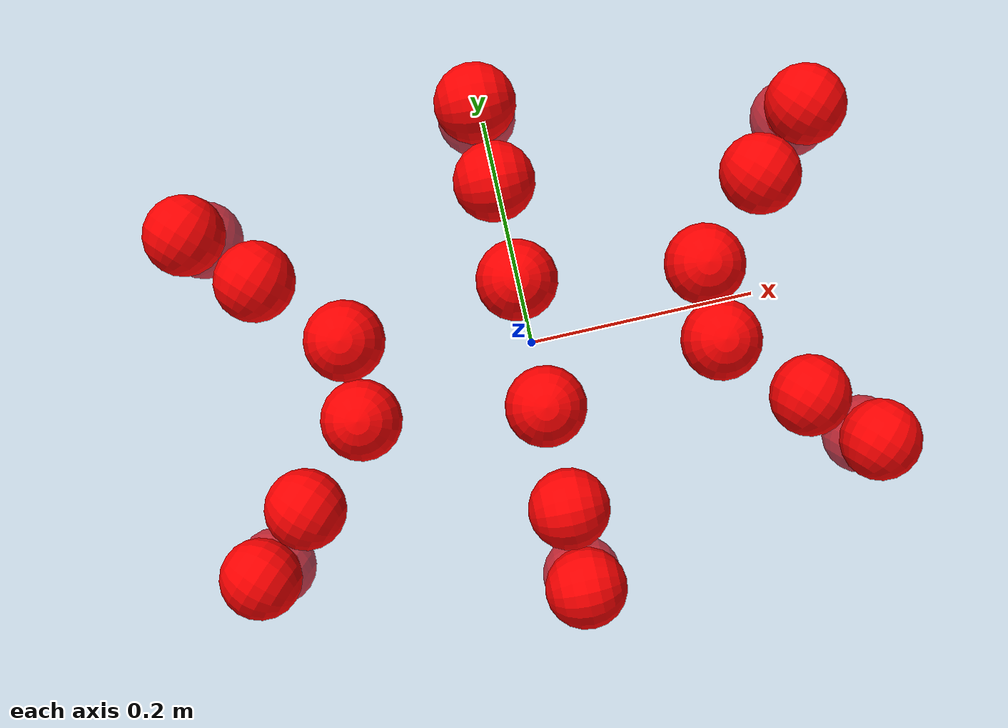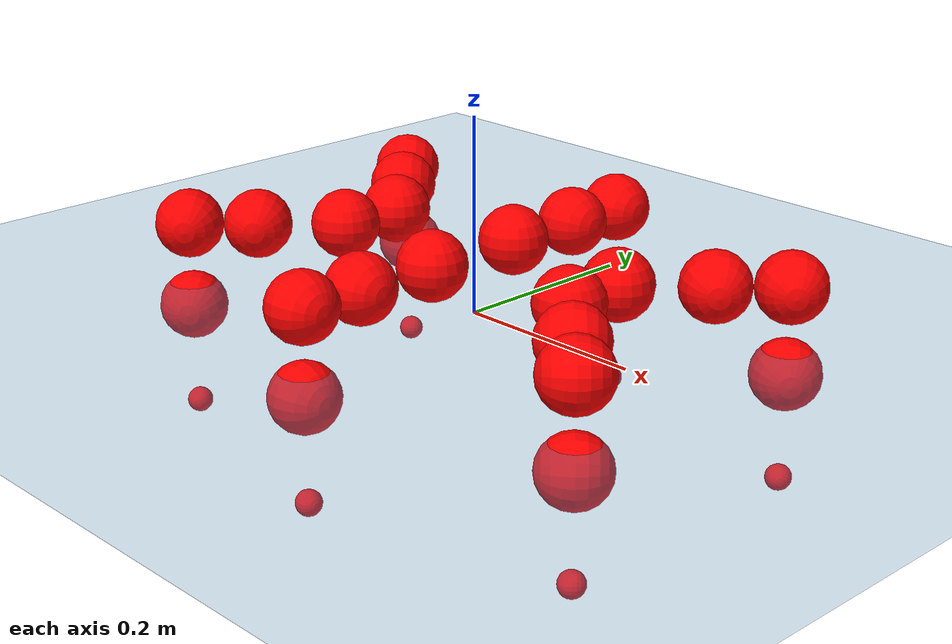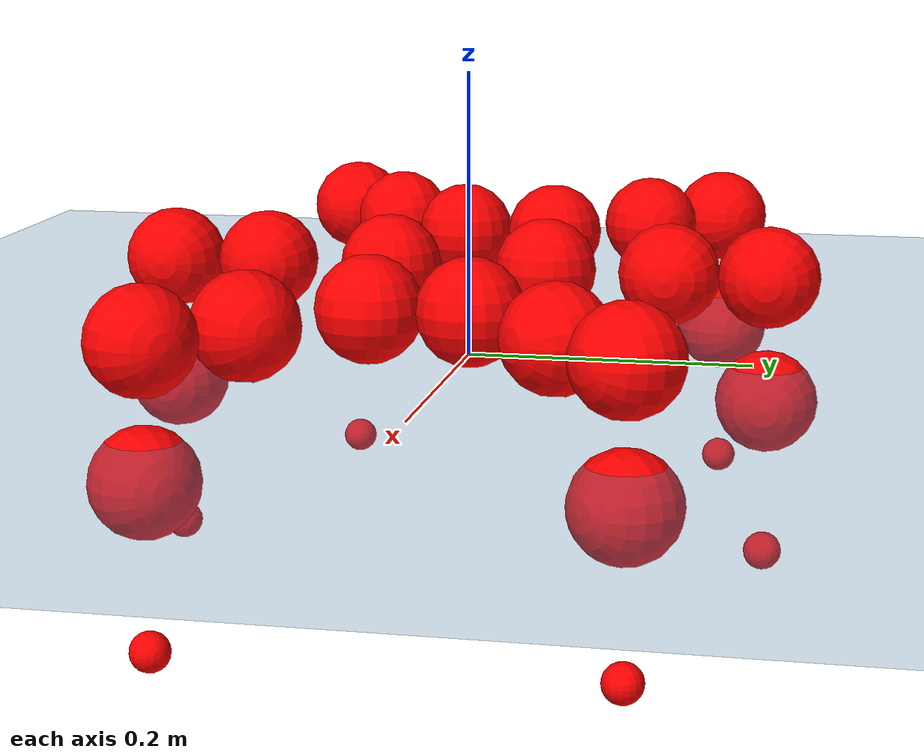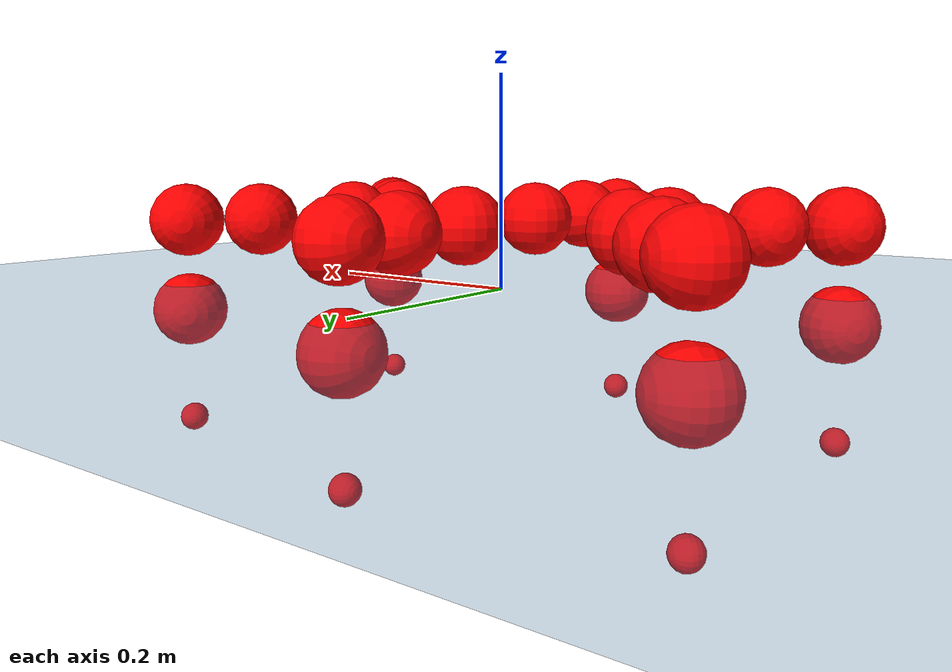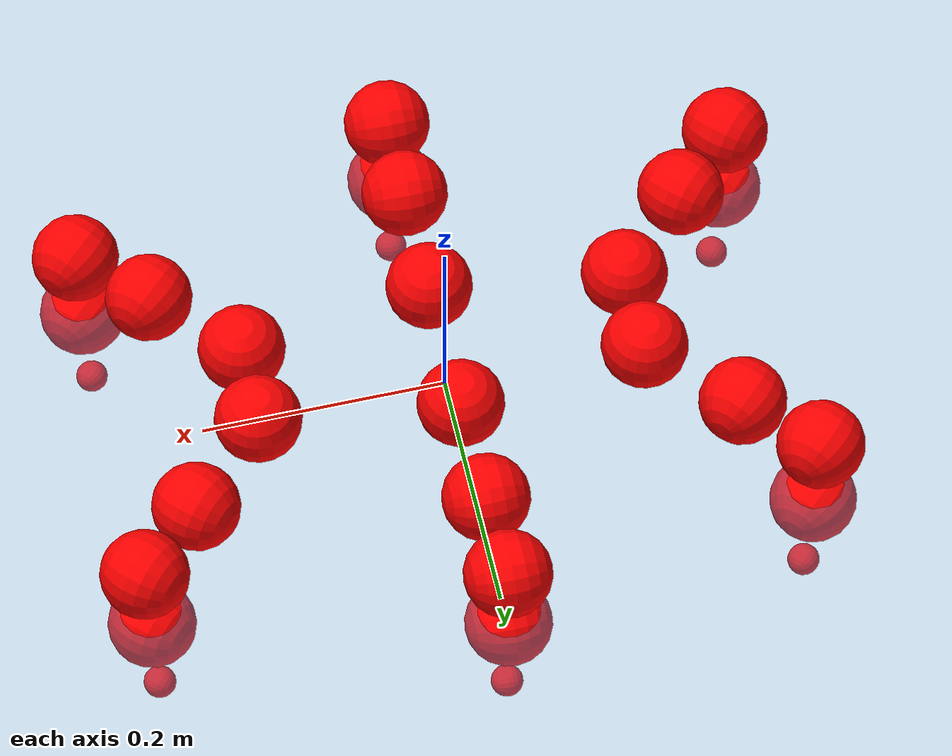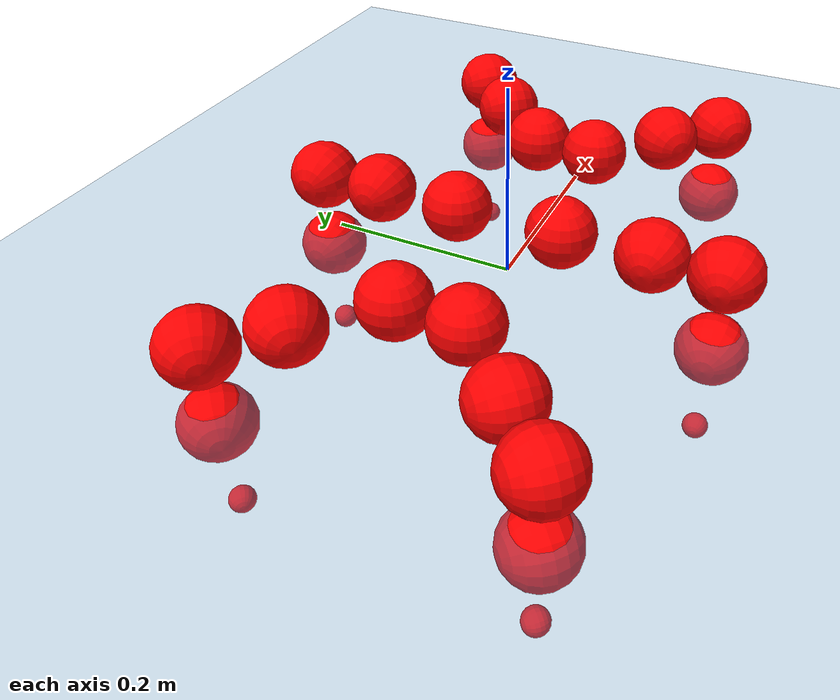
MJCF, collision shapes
<mujoco model="Golem">
  <compiler angle="radian" assetdir="assets" balanceinertia="true" inertiafromgeom="false"/>

  <option timestep="0.005" density="1.2" viscosity="2e-05"/>

  <size nkey="1"/>

  <visual>
    <quality shadowsize="8192"/>
    <map shadowclip="0.5"/>
  </visual>

  <default>
    <default class="/">
      <joint armature="0.01" damping="0.01" frictionloss="0.01"/>
      <geom contype="0" conaffinity="0" group="1" solref="-1000 -80"/>
      <site size="0.01 0.005 0.005" group="5"/>
      <general forcelimited="true" biastype="affine" gainprm="25" biasprm="0 -25 -0.5"/>
      <default class="visual">
        <geom type="mesh" group="2"/>
      </default>
      <default class="collision">
        <geom group="3"/>
      </default>
      <default class="foot">
        <geom size="0.01 0 0" condim="6" group="4" priority="1" solimp="0.015 1 0.01"/>
      </default>
      <default class="reward_collision_sphere">
        <geom group="5" rgba="1 0 0 1"/>
      </default>
    </default>
  </default>

  <asset>
    <texture type="skybox" colorspace="auto" name="//unnamed_texture_0" builtin="gradient" rgb1="0.95 0.95 0.95" rgb2="0.95 0.95 0.95" width="100" height="600"/>
    <texture type="2d" colorspace="auto" name="texplane" builtin="checker" rgb1="0.345 0.575 0.748" rgb2="0.345 0.575 0.748" markrgb="1 1 1" width="512" height="512"/>
    <material name="MatPlane" class="/" texture="texplane" texuniform="true" texrepeat="2 2" specular="0.9"/>
    <mesh name="body" class="/" file="body.stl" scale="0.001 0.001 0.001"/>
    <mesh name="coxa" class="/" file="coxa.stl" scale="0.001 0.001 0.001"/>
    <mesh name="femur" class="/" file="femur.stl" scale="0.001 0.001 0.001"/>
    <mesh name="tibia" class="/" file="tibia.stl" scale="0.001 0.001 0.001"/>
    <mesh name="tarsus" class="/" file="tarsus.stl" scale="0.001 0.001 0.001"/>
  </asset>

  <worldbody>
    <geom name="floor" class="/" size="100 100 0.125" type="plane" group="0" material="MatPlane"/>
    <light name="toplight_shadow" class="/" pos="0 0 5" dir="0.0990148 0.0990148 -0.990148" type="directional" ambient="0.04 0.04 0.04" diffuse="0.55 0.55 0.55" specular="0.12 0.12 0.12"/>
    <light name="toplight_fill" class="/" pos="0 0 5" dir="0.0990148 0.0990148 -0.990148" type="directional" castshadow="false" ambient="0.04 0.04 0.04" diffuse="0.3 0.3 0.3" specular="0.08 0.08 0.08"/>
    <body name="trunk" pos="0.000584537 0.000197003 -0.000302565" quat="1 0.000151782 0.00026145 -4.67389e-06">
      <inertial pos="-0.000351242 0.00077558 -0.00318041" quat="0.99999 0.00422734 0.000786421 -0.00132602" mass="2.59677" diaginertia="0.0105183 0.00117439 0.00969776"/>
      <joint name="//unnamed_joint_0" type="free"/>
      <geom name="//unnamed_geom_1" class="/" pos="0 0 0.0635681" quat="1 0 0 0" type="mesh" rgba="0.9 0.9 0.9 1" mesh="body"/>
      <site name="imu" class="/" pos="0.130869 -0.000592634 0.103619" size="0.00884732"/>
      <camera name="track" class="/" pos="0 -1.30172 0" quat="0.707107 0.707107 0 0" mode="trackcom"/>
      <camera name="ego_camera" class="/" pos="0.131311 0 0.0993251" quat="-0.5 -0.5 0.5 0.5"/>
      <body name="coxa_RR" pos="-0.17849 -0.0546836 0.0633706" quat="0.382747 5.41132e-05 -0.00013147 -0.923853">
        <inertial pos="-0.00102021 -0.000621711 -0.000386154" quat="0.999985 0.00420472 -0.00333201 -0.00113568" mass="0.140527" diaginertia="0.0105705 0.00116762 0.00971155"/>
        <joint name="coxa_joint_RR" class="/" pos="0 0 0" axis="-0.000232703 -0.00179574 -0.999998" range="-3.13589 3.117" armature="0.00926363" damping="0.00388044" frictionloss="0.00888996"/>
        <geom name="//unnamed_geom_2" class="/" type="mesh" rgba="0.2 0.2 0.2 1" mesh="coxa"/>
        <geom name="//unnamed_geom_3" class="reward_collision_sphere" size="0.0353893" pos="-0.0303025 0 0"/>
        <body name="femur_RR" pos="0.0595453 0.000606135 -0.000362621" quat="0.499933 -0.499943 0.499881 0.500243">
          <inertial pos="0.00033426 -0.000642037 -0.000108466" quat="0.999999 0.000959808 -0.000579044 6.79999e-05" mass="0.137292" diaginertia="0.0104241 0.00115691 0.00962448"/>
          <joint name="femur_joint_RR" class="/" pos="0 0 0" axis="0.00197867 0.00132108 -0.999997" range="-3.15774 3.15588" armature="0.00883898" damping="0" frictionloss="0.00856323"/>
          <geom name="//unnamed_geom_4" class="/" type="mesh" rgba="0.9 0.9 0.9 1" mesh="femur"/>
          <geom name="//unnamed_geom_5" class="reward_collision_sphere" size="0.0353893"/>
          <body name="tibia_RR" pos="0.000181707 -0.0706253 -0.000491505" quat="8.22607e-05 1 5.66478e-05 -0.000337379">
            <inertial pos="0.000636428 0.000298053 -0.000333836" quat="0.999994 -0.00105455 0.00304898 0.00114086" mass="0.140654" diaginertia="0.0104559 0.00117239 0.00963394"/>
            <joint name="tibia_joint_RR" class="/" pos="0 0 0" axis="5.35104e-05 -9.13813e-05 1" range="-3.12843 3.13927" armature="0.00891323" damping="0.000590865" frictionloss="0.0088403"/>
            <geom name="//unnamed_geom_6" class="/" type="mesh" rgba="0.2 0.2 0.2 1" mesh="tibia"/>
            <geom name="//unnamed_geom_7" class="reward_collision_sphere" size="0.0353893"/>
            <body name="tarsus_RR" pos="0.0887094 0.000329321 -0.000872289" quat="1 0.000161776 -0.000411636 -0.000173452">
              <inertial pos="0.0621855 0.000683505 0.000359673" quat="0.500492 0.499222 0.500414 0.49987" mass="0.139269" diaginertia="0.0105082 0.00117788 0.00968395"/>
              <joint name="tarsus_joint_RR" class="/" pos="0 0 0" axis="-0.00412322 0.00234444 0.999989" range="-3.13994 3.13824" armature="0.00898412" damping="0.0430664" frictionloss="0.00898989"/>
              <geom name="//unnamed_geom_8" class="/" type="mesh" rgba="0.9 0.9 0.9 1" mesh="tarsus"/>
              <geom name="foot_1" class="foot" size="0.00855458" pos="0.113129 0 0" quat="0 -0.707107 0 0.707107"/>
              <geom name="//unnamed_geom_10" class="reward_collision_sphere" size="0.0353893"/>
              <geom name="//unnamed_geom_11" class="reward_collision_sphere" size="0.013271" pos="0.108584 0 0"/>
              <site name="foot_1" class="foot" pos="0.113129 0 0" quat="0 -0.707107 0 0.707107" size="0.00884732"/>
            </body>
          </body>
        </body>
      </body>
      <body name="coxa_RM" pos="-0.00063339 -0.0865412 0.0634357" quat="0.707042 -0.000100151 -2.19317e-05 -0.707172">
        <inertial pos="3.55808e-05 -5.42741e-05 -0.000170159" quat="1 -0.000144239 -8.74741e-05 -1.14108e-06" mass="0.138952" diaginertia="0.0106728 0.00116138 0.00969221"/>
        <joint name="coxa_joint_RM" class="/" pos="0 0 0" axis="-0.000352655 -0.000786057 -1" stiffness="4.1605e-05" range="-3.14637 3.13837" armature="0.00858412" damping="0.00825933" frictionloss="0.00882419"/>
        <geom name="//unnamed_geom_12" class="/" type="mesh" rgba="0.2 0.2 0.2 1" mesh="coxa"/>
        <geom name="//unnamed_geom_13" class="reward_collision_sphere" size="0.0353893" pos="-0.0303025 0 0"/>
        <body name="femur_RM" pos="0.0593553 0.000271575 5.86848e-05" quat="0.499801 -0.500422 0.499995 0.499781">
          <inertial pos="0.000162573 0.000696245 -0.000418951" quat="0.999991 0.000309226 -0.00258361 0.00327612" mass="0.135277" diaginertia="0.0104751 0.00114782 0.00949239"/>
          <joint name="femur_joint_RM" class="/" pos="0 0 0" axis="0.000398831 0.000173319 -1" range="-3.15873 3.13596" armature="0.00879406" damping="0.00945871" frictionloss="0.00883288"/>
          <geom name="//unnamed_geom_14" class="/" type="mesh" rgba="0.9 0.9 0.9 1" mesh="femur"/>
          <geom name="//unnamed_geom_15" class="reward_collision_sphere" size="0.0353893"/>
          <body name="tibia_RM" pos="0.000135472 -0.0690772 -0.00045812" quat="0.000251529 1 0.000383335 4.25544e-05">
            <inertial pos="0.000644611 0.000502925 -0.000264468" quat="0.999997 -0.00113828 0.0011964 0.00160435" mass="0.139112" diaginertia="0.0105368 0.0011635 0.00954043"/>
            <joint name="tibia_joint_RM" class="/" pos="0 0 0" axis="0.00260568 0.00218186 0.999994" range="-3.13766 3.13666" armature="0.00866744" damping="0.00550198" frictionloss="0.00875908"/>
            <geom name="//unnamed_geom_16" class="/" type="mesh" rgba="0.2 0.2 0.2 1" mesh="tibia"/>
            <geom name="//unnamed_geom_17" class="reward_collision_sphere" size="0.0353893"/>
            <body name="tarsus_RM" pos="0.0892866 -9.29887e-06 0.00109078" quat="1 4.33906e-05 -4.88056e-05 -9.38897e-05">
              <inertial pos="0.0605696 -0.000185712 0.000317982" quat="0.501188 0.49978 0.49901 0.50002" mass="0.139224" diaginertia="0.0104278 0.00117425 0.00951345"/>
              <joint name="tarsus_joint_RM" class="/" pos="0 0 0" axis="1.24956e-06 5.3044e-05 1" range="-3.12588 3.15853" armature="0.00923833" damping="0.00451683" frictionloss="0.00840642"/>
              <geom name="//unnamed_geom_18" class="/" type="mesh" rgba="0.9 0.9 0.9 1" mesh="tarsus"/>
              <geom name="foot_2" class="foot" size="0.00887002" pos="0.113129 0 0" quat="0 -0.707107 0 0.707107"/>
              <geom name="//unnamed_geom_20" class="reward_collision_sphere" size="0.0353893"/>
              <geom name="//unnamed_geom_21" class="reward_collision_sphere" size="0.013271" pos="0.108584 0 0"/>
              <site name="foot_2" class="foot" pos="0.113129 0 0" quat="0 -0.707107 0 0.707107" size="0.00884732"/>
            </body>
          </body>
        </body>
      </body>
      <body name="coxa_RF" pos="0.179692 -0.0546627 0.0629547" quat="0.923877 -7.72404e-06 -2.37348e-06 -0.382689">
        <inertial pos="0.00065181 0.000412672 0.000261189" quat="0.999999 -0.00100728 0.000434122 0.000168444" mass="0.139117" diaginertia="0.0104501 0.00117851 0.00965542"/>
        <joint name="coxa_joint_RF" class="/" pos="0 0 0" axis="0.00020511 0.000176348 -1" range="-3.15617 3.12781" armature="0.00907636" damping="0.00153375" frictionloss="0.00898067"/>
        <geom name="//unnamed_geom_22" class="/" type="mesh" rgba="0.2 0.2 0.2 1" mesh="coxa"/>
        <geom name="//unnamed_geom_23" class="reward_collision_sphere" size="0.0353893" pos="-0.0303025 0 0"/>
        <body name="femur_RF" pos="0.059174 0.000384632 -0.00056333" quat="0.500001 -0.499999 0.499999 0.500001">
          <inertial pos="0.000362525 0.000653022 0.000892821" quat="1 -0.00014847 0.000150338 7.08468e-06" mass="0.135809" diaginertia="0.0104221 0.00115635 0.00951698"/>
          <joint name="femur_joint_RF" class="/" pos="0 0 0" axis="0.00504167 0.000470481 -0.999987" range="-3.13926 3.15622" armature="0.00930678" damping="0.00958064" frictionloss="0.00864264"/>
          <geom name="//unnamed_geom_24" class="/" type="mesh" rgba="0.9 0.9 0.9 1" mesh="femur"/>
          <geom name="//unnamed_geom_25" class="reward_collision_sphere" size="0.0353893"/>
          <body name="tibia_RF" pos="0.000838124 -0.0712644 0.000482317" quat="-0.00034284 1 0.000364994 0.000127215">
            <inertial pos="0.00051553 0.000346648 -0.000195615" quat="0.999998 0.00112045 -0.00127577 -0.000617431" mass="0.138311" diaginertia="0.0106255 0.00117405 0.00984348"/>
            <joint name="tibia_joint_RF" class="/" pos="0 0 0" axis="-4.36308e-05 -0.000189116 1" range="-3.13702 3.14712" armature="0.00893291" damping="0.0120732" frictionloss="0.00869979"/>
            <geom name="//unnamed_geom_26" class="/" type="mesh" rgba="0.2 0.2 0.2 1" mesh="tibia"/>
            <geom name="//unnamed_geom_27" class="reward_collision_sphere" size="0.0353893"/>
            <body name="tarsus_RF" pos="0.0879018 0.000214333 -0.000337863" quat="1 -0.000145739 0.00016343 0.000327888">
              <inertial pos="0.0594999 0.000382402 -0.000187667" quat="0.49852 0.502412 0.501503 0.497548" mass="0.140009" diaginertia="0.010651 0.00118448 0.0097519"/>
              <joint name="tarsus_joint_RF" class="/" pos="0 0 0" axis="0.00160166 -0.00657904 0.999977" range="-3.1365 3.14357" armature="0.00886782" damping="0" frictionloss="0.00846551"/>
              <geom name="//unnamed_geom_28" class="/" type="mesh" rgba="0.9 0.9 0.9 1" mesh="tarsus"/>
              <geom name="foot_3" class="foot" size="0.00878336" pos="0.113129 0 0" quat="0 -0.707107 0 0.707107"/>
              <geom name="//unnamed_geom_30" class="reward_collision_sphere" size="0.0353893"/>
              <geom name="//unnamed_geom_31" class="reward_collision_sphere" size="0.013271" pos="0.108584 0 0"/>
              <site name="foot_3" class="foot" pos="0.113129 0 0" quat="0 -0.707107 0 0.707107" size="0.00884732"/>
            </body>
          </body>
        </body>
      </body>
      <body name="coxa_LR" pos="-0.177965 0.0573504 0.0645876" quat="0.382731 -4.84611e-05 1.44388e-05 0.92386">
        <inertial pos="0.000330659 -0.000123443 0.000618742" quat="1 -0.000102005 0.000361947 0.000174902" mass="0.139625" diaginertia="0.0104954 0.00117139 0.00953411"/>
        <joint name="coxa_joint_LR" class="/" pos="0 0 0" axis="0.00302892 -0.00171849 -0.999994" range="-3.14256 3.13844" armature="0.0092679" damping="0.0060952" frictionloss="0.00889423"/>
        <geom name="//unnamed_geom_32" class="/" type="mesh" rgba="0.2 0.2 0.2 1" mesh="coxa"/>
        <geom name="//unnamed_geom_33" class="reward_collision_sphere" size="0.0353893" pos="-0.0303025 0 0"/>
        <body name="femur_LR" pos="0.0616235 -0.00162404 -0.00149126" quat="0.499702 -0.500128 0.500242 0.499928">
          <inertial pos="6.51463e-05 -0.000557834 -0.00101933" quat="0.999995 0.000181228 0.000357945 -0.00319442" mass="0.137786" diaginertia="0.0103994 0.00118114 0.00956252"/>
          <joint name="femur_joint_LR" class="/" pos="0 0 0" axis="0.00022684 -0.00025752 1" range="-3.14555 3.1428" armature="0.00886244" damping="0" frictionloss="0.00887342"/>
          <geom name="//unnamed_geom_34" class="/" type="mesh" rgba="0.9 0.9 0.9 1" mesh="femur"/>
          <geom name="//unnamed_geom_35" class="reward_collision_sphere" size="0.0353893"/>
          <body name="tibia_LR" pos="0.000608082 -0.0719125 -0.000849559" quat="-0.000100845 1 -4.3659e-05 -9.31805e-06">
            <inertial pos="-0.00128082 0.000358684 -0.000278504" quat="0.999998 -0.00148762 0.000574563 -0.00148851" mass="0.138547" diaginertia="0.0104711 0.00116214 0.00970869"/>
            <joint name="tibia_joint_LR" class="/" pos="0 0 0" axis="0.00112305 4.25645e-05 -0.999999" range="-3.13064 3.13149" armature="0.00921466" damping="0.00345686" frictionloss="0.00904273"/>
            <geom name="//unnamed_geom_36" class="/" type="mesh" rgba="0.2 0.2 0.2 1" mesh="tibia"/>
            <geom name="//unnamed_geom_37" class="reward_collision_sphere" size="0.0353893"/>
            <body name="tarsus_LR" pos="0.0897127 0.00125723 0.00128485" quat="1 -4.67088e-05 -4.48381e-05 -5.31762e-05">
              <inertial pos="0.0614456 0.000766096 0.000135567" quat="0.501249 0.499504 0.499274 0.49997" mass="0.140287" diaginertia="0.0106613 0.00115996 0.00968468"/>
              <joint name="tarsus_joint_LR" class="/" pos="0 0 0" axis="-0.00450978 -0.00166322 -0.999988" stiffness="0.00276901" range="-3.14873 3.14877" armature="0.00866861" damping="0.0281691" frictionloss="0.00865256"/>
              <geom name="//unnamed_geom_38" class="/" type="mesh" rgba="0.9 0.9 0.9 1" mesh="tarsus"/>
              <geom name="foot_4" class="foot" size="0.00871165" pos="0.113129 0 0" quat="0.707107 0 -0.707107 0"/>
              <geom name="//unnamed_geom_40" class="reward_collision_sphere" size="0.0353893"/>
              <geom name="//unnamed_geom_41" class="reward_collision_sphere" size="0.013271" pos="0.108584 0 0"/>
              <site name="foot_4" class="foot" pos="0.113129 0 0" quat="0.707107 0 -0.707107 0" size="0.00884732"/>
            </body>
          </body>
        </body>
      </body>
      <body name="coxa_LM" pos="-0.00141102 0.0848749 0.0635391" quat="0.707107 4.93553e-06 -3.5064e-05 0.707107">
        <inertial pos="0.000733658 0.000775169 0.000145156" quat="1 2.56983e-05 -3.14968e-05 2.1009e-05" mass="0.13866" diaginertia="0.0105196 0.00116888 0.00968282"/>
        <joint name="coxa_joint_LM" class="/" pos="0 0 0" axis="0.00044626 -0.00476995 -0.999989" range="-3.15595 3.15616" armature="0.00886137" damping="0.00705176" frictionloss="0.0084568"/>
        <geom name="//unnamed_geom_42" class="/" type="mesh" rgba="0.2 0.2 0.2 1" mesh="coxa"/>
        <geom name="//unnamed_geom_43" class="reward_collision_sphere" size="0.0353893" pos="-0.0303025 0 0"/>
        <body name="femur_LM" pos="0.0561151 0.000590681 -0.000607424" quat="0.5004 -0.500009 0.499606 0.499985">
          <inertial pos="0.000601747 -0.000922444 -0.000419028" quat="0.999998 -0.000712823 0.00137829 -0.00124105" mass="0.138732" diaginertia="0.0104801 0.00118102 0.00971847"/>
          <joint name="femur_joint_LM" class="/" pos="0 0 0" axis="0.00449719 0.0011328 0.999989" range="-3.15267 3.14071" armature="0.00848914" damping="0.00492454" frictionloss="0.00877745"/>
          <geom name="//unnamed_geom_44" class="/" type="mesh" rgba="0.9 0.9 0.9 1" mesh="femur"/>
          <geom name="//unnamed_geom_45" class="reward_collision_sphere" size="0.0353893"/>
          <body name="tibia_LM" pos="0.000374791 -0.0687551 0.00153208" quat="-0.000105979 1 0.000108525 7.65852e-05">
            <inertial pos="-0.000413327 -0.00097528 -0.000973956" quat="0.999999 -0.00168929 -0.000295127 -0.000166645" mass="0.138809" diaginertia="0.0105869 0.00118052 0.00986685"/>
            <joint name="tibia_joint_LM" class="/" pos="0 0 0" axis="-0.000235046 -0.00195993 -0.999998" range="-3.1326 3.12836" armature="0.00893936" damping="0.00234955" frictionloss="0.00922763"/>
            <geom name="//unnamed_geom_46" class="/" type="mesh" rgba="0.2 0.2 0.2 1" mesh="tibia"/>
            <geom name="//unnamed_geom_47" class="reward_collision_sphere" size="0.0353893"/>
            <body name="tarsus_LM" pos="0.0873956 -6.5185e-05 -0.00144066" quat="1 -2.09753e-05 1.23733e-06 -1.33356e-05">
              <inertial pos="0.0607572 0.000488377 -0.000161702" quat="0.496164 0.501285 0.500703 0.501827" mass="0.140349" diaginertia="0.0104252 0.0011729 0.00968032"/>
              <joint name="tarsus_joint_LM" class="/" pos="0 0 0" axis="0.00275527 0.00709651 -0.999971" range="-3.13515 3.15312" armature="0.00886358" damping="0.00397307" frictionloss="0.00886936"/>
              <geom name="//unnamed_geom_48" class="/" type="mesh" rgba="0.9 0.9 0.9 1" mesh="tarsus"/>
              <geom name="foot_5" class="foot" size="0.00868991" pos="0.113129 0 0" quat="0.707107 0 -0.707107 0"/>
              <geom name="//unnamed_geom_50" class="reward_collision_sphere" size="0.0353893"/>
              <geom name="//unnamed_geom_51" class="reward_collision_sphere" size="0.013271" pos="0.108584 0 0"/>
              <site name="foot_5" class="foot" pos="0.113129 0 0" quat="0.707107 0 -0.707107 0" size="0.00884732"/>
            </body>
          </body>
        </body>
      </body>
      <body name="coxa_LF" pos="0.179771 0.0542218 0.0637605" quat="0.923884 2.35781e-05 4.59867e-05 0.382672">
        <inertial pos="-3.63323e-06 0.000255958 2.79807e-05" quat="1 0.000192739 -6.41761e-05 8.82831e-05" mass="0.1375" diaginertia="0.0105165 0.00116075 0.00962635"/>
        <joint name="coxa_joint_LF" class="/" pos="0 0 0" axis="0.00143856 0.00237313 -0.999996" range="-3.13928 3.15456" armature="0.00887775" damping="0.00347708" frictionloss="0.00884543"/>
        <geom name="//unnamed_geom_52" class="/" type="mesh" rgba="0.2 0.2 0.2 1" mesh="coxa"/>
        <geom name="//unnamed_geom_53" class="reward_collision_sphere" size="0.0353893" pos="-0.0303025 0 0"/>
        <body name="femur_LF" pos="0.0603312 0.0014357 -0.00150027" quat="0.500076 -0.49991 0.499939 0.500075">
          <inertial pos="4.15929e-06 -0.000685833 -0.000131951" quat="0.999999 0.00029974 -0.000919553 -0.000595922" mass="0.139423" diaginertia="0.010562 0.00118933 0.00977963"/>
          <joint name="femur_joint_LF" class="/" pos="0 0 0" axis="-0.00119689 0.00232517 0.999997" range="-3.13782 3.13357" armature="0.00897056" damping="0.000417117" frictionloss="0.00902865"/>
          <geom name="//unnamed_geom_54" class="/" type="mesh" rgba="0.9 0.9 0.9 1" mesh="femur"/>
          <geom name="//unnamed_geom_55" class="reward_collision_sphere" size="0.0353893"/>
          <body name="tibia_LF" pos="-0.000102242 -0.0707836 -0.000802578" quat="0.000234014 1 -0.00010168 2.89047e-05">
            <inertial pos="-0.000170634 -0.00092613 0.00054295" quat="0.999999 0.000857395 -0.00108198 0.00101748" mass="0.139058" diaginertia="0.0105443 0.00115993 0.00958869"/>
            <joint name="tibia_joint_LF" class="/" pos="0 0 0" axis="-0.00218366 0.000804215 -0.999997" range="-3.14101 3.15698" armature="0.00838304" damping="0.000741636" frictionloss="0.00882549"/>
            <geom name="//unnamed_geom_56" class="/" type="mesh" rgba="0.2 0.2 0.2 1" mesh="tibia"/>
            <geom name="//unnamed_geom_57" class="reward_collision_sphere" size="0.0353893"/>
            <body name="tarsus_LF" pos="0.0879364 -0.000406089 -0.000516483" quat="1 -0.000467781 -0.000298469 -1.16944e-05">
              <inertial pos="0.0604775 0.000200369 -0.000172576" quat="0.500065 0.499999 0.498887 0.501046" mass="0.138735" diaginertia="0.0105646 0.00117481 0.00965488"/>
              <joint name="tarsus_joint_LF" class="/" pos="0 0 0" axis="0.000290039 0.0015242 -0.999999" range="-3.13938 3.14353" armature="0.00886648" damping="0.00999217" frictionloss="0.00889549"/>
              <geom name="//unnamed_geom_58" class="/" type="mesh" rgba="0.9 0.9 0.9 1" mesh="tarsus"/>
              <geom name="foot_6" class="foot" size="0.00888786" pos="0.113129 0 0" quat="0.707107 0 -0.707107 0"/>
              <geom name="//unnamed_geom_60" class="reward_collision_sphere" size="0.0353893"/>
              <geom name="//unnamed_geom_61" class="reward_collision_sphere" size="0.013271" pos="0.108584 0 0"/>
              <site name="foot_6" class="foot" pos="0.113129 0 0" quat="0.707107 0 -0.707107 0" size="0.00884732"/>
            </body>
          </body>
        </body>
      </body>
    </body>
  </worldbody>

  <contact>
    <pair class="/" geom1="floor" geom2="foot_1" name="//unnamed_contact_0"/>
    <pair class="/" geom1="floor" geom2="foot_2" name="//unnamed_contact_1"/>
    <pair class="/" geom1="floor" geom2="foot_3" name="//unnamed_contact_2"/>
    <pair class="/" geom1="floor" geom2="foot_4" name="//unnamed_contact_3"/>
    <pair class="/" geom1="floor" geom2="foot_5" name="//unnamed_contact_4"/>
    <pair class="/" geom1="floor" geom2="foot_6" name="//unnamed_contact_5"/>
  </contact>

  <actuator>
    <general name="coxa_joint_RR" class="/" joint="coxa_joint_RR" forcerange="-6.47119 6.47119" gainprm="21.0857" biasprm="0 -21.0857 -0.465136"/>
    <general name="femur_joint_RR" class="/" joint="femur_joint_RR" forcerange="-6.4513 6.4513" gainprm="21.0857" biasprm="0 -21.0857 -0.465136"/>
    <general name="tibia_joint_RR" class="/" joint="tibia_joint_RR" forcerange="-6.38727 6.38727" gainprm="21.0857" biasprm="0 -21.0857 -0.465136"/>
    <general name="tarsus_joint_RR" class="/" joint="tarsus_joint_RR" forcerange="-6.4299 6.4299" gainprm="21.0857" biasprm="0 -21.0857 -0.465136"/>
    <general name="coxa_joint_RM" class="/" joint="coxa_joint_RM" forcerange="-6.47835 6.47835" gainprm="21.0857" biasprm="0 -21.0857 -0.465136"/>
    <general name="femur_joint_RM" class="/" joint="femur_joint_RM" forcerange="-6.55333 6.55333" gainprm="21.0857" biasprm="0 -21.0857 -0.465136"/>
    <general name="tibia_joint_RM" class="/" joint="tibia_joint_RM" forcerange="-6.45238 6.45238" gainprm="21.0857" biasprm="0 -21.0857 -0.465136"/>
    <general name="tarsus_joint_RM" class="/" joint="tarsus_joint_RM" forcerange="-6.3684 6.3684" gainprm="21.0857" biasprm="0 -21.0857 -0.465136"/>
    <general name="coxa_joint_RF" class="/" joint="coxa_joint_RF" forcerange="-6.50517 6.50517" gainprm="21.0857" biasprm="0 -21.0857 -0.465136"/>
    <general name="femur_joint_RF" class="/" joint="femur_joint_RF" forcerange="-6.58992 6.58992" gainprm="21.0857" biasprm="0 -21.0857 -0.465136"/>
    <general name="tibia_joint_RF" class="/" joint="tibia_joint_RF" forcerange="-6.30392 6.30392" gainprm="21.0857" biasprm="0 -21.0857 -0.465136"/>
    <general name="tarsus_joint_RF" class="/" joint="tarsus_joint_RF" forcerange="-6.28197 6.28197" gainprm="21.0857" biasprm="0 -21.0857 -0.465136"/>
    <general name="coxa_joint_LR" class="/" joint="coxa_joint_LR" forcerange="-6.41337 6.41337" gainprm="21.0857" biasprm="0 -21.0857 -0.465136"/>
    <general name="femur_joint_LR" class="/" joint="femur_joint_LR" forcerange="-6.67669 6.67669" gainprm="21.0857" biasprm="0 -21.0857 -0.465136"/>
    <general name="tibia_joint_LR" class="/" joint="tibia_joint_LR" forcerange="-6.33144 6.33144" gainprm="21.0857" biasprm="0 -21.0857 -0.465136"/>
    <general name="tarsus_joint_LR" class="/" joint="tarsus_joint_LR" forcerange="-6.65337 6.65337" gainprm="21.0857" biasprm="0 -21.0857 -0.465136"/>
    <general name="coxa_joint_LM" class="/" joint="coxa_joint_LM" forcerange="-6.24727 6.24727" gainprm="21.0857" biasprm="0 -21.0857 -0.465136"/>
    <general name="femur_joint_LM" class="/" joint="femur_joint_LM" forcerange="-6.4938 6.4938" gainprm="21.0857" biasprm="0 -21.0857 -0.465136"/>
    <general name="tibia_joint_LM" class="/" joint="tibia_joint_LM" forcerange="-6.45134 6.45134" gainprm="21.0857" biasprm="0 -21.0857 -0.465136"/>
    <general name="tarsus_joint_LM" class="/" joint="tarsus_joint_LM" forcerange="-6.60825 6.60825" gainprm="21.0857" biasprm="0 -21.0857 -0.465136"/>
    <general name="coxa_joint_LF" class="/" joint="coxa_joint_LF" forcerange="-6.48684 6.48684" gainprm="21.0857" biasprm="0 -21.0857 -0.465136"/>
    <general name="femur_joint_LF" class="/" joint="femur_joint_LF" forcerange="-6.45891 6.45891" gainprm="21.0857" biasprm="0 -21.0857 -0.465136"/>
    <general name="tibia_joint_LF" class="/" joint="tibia_joint_LF" forcerange="-6.37205 6.37205" gainprm="21.0857" biasprm="0 -21.0857 -0.465136"/>
    <general name="tarsus_joint_LF" class="/" joint="tarsus_joint_LF" forcerange="-6.45026 6.45026" gainprm="21.0857" biasprm="0 -21.0857 -0.465136"/>
  </actuator>

  <sensor>
    <gyro site="imu" name="imu_angular_velocity"/>
    <velocimeter site="imu" name="imu_linear_velocity"/>
    <framelinvel objtype="site" objname="foot_1" name="foot_1_global_linear_velocity"/>
    <framelinvel objtype="site" objname="foot_2" name="foot_2_global_linear_velocity"/>
    <framelinvel objtype="site" objname="foot_3" name="foot_3_global_linear_velocity"/>
    <framelinvel objtype="site" objname="foot_4" name="foot_4_global_linear_velocity"/>
    <framelinvel objtype="site" objname="foot_5" name="foot_5_global_linear_velocity"/>
    <framelinvel objtype="site" objname="foot_6" name="foot_6_global_linear_velocity"/>
  </sensor>

  <keyframe>
    <key name="home" qpos="0 0 0.1457 1 0 0 0 0 0 0 0 0 0 0 0 0 0 0 0 0 0 0 0 0 0 0 0 0 0 0 0"/>
  </keyframe>
</mujoco>
